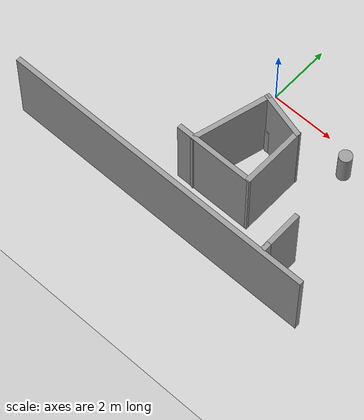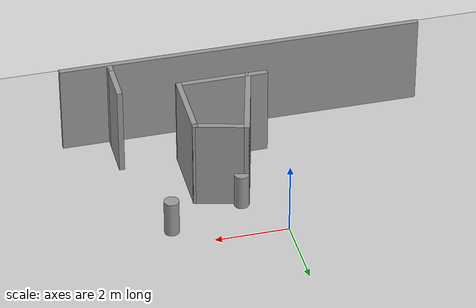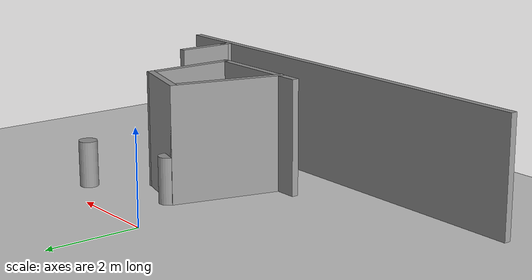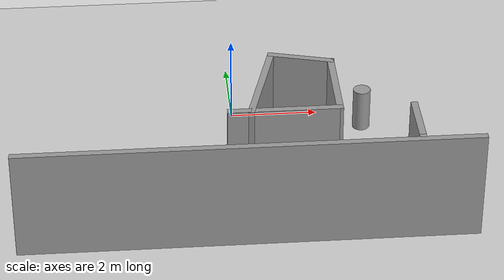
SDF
<sdf version="1.7">
 <world name="default">
  <model name="ground_plane">
   <static>1</static>
   <link name="link">
    <collision name="collision">
     <geometry><plane><normal>0 0 1</normal><size>100 100</size></plane></geometry>
     <surface>
      <contact><collide_bitmask>65535</collide_bitmask></contact>
      <friction><ode><mu>100</mu><mu2>50</mu2></ode></friction>
     </surface>
    </collision>
    <visual name="visual">
     <cast_shadows>0</cast_shadows>
     <geometry><plane><normal>0 0 1</normal><size>100 100</size></plane></geometry>
     <material>
      <script><uri>file://media/materials/scripts/gazebo.material</uri><name>Gazebo/Grey</name></script>
     </material>
    </visual>
   </link>
  </model>
  <model name="map10x10">
   <pose>0.061304 -0.054192 0 0 -0 0</pose>
   <link name="Wall_25">
    <collision name="Wall_25_Collision">
     <geometry><box><size>10 0.15 2.5</size></box></geometry>
     <pose>0 0 1.25 0 -0 0</pose>
    </collision>
    <visual name="Wall_25_Visual">
     <pose>0 0 1.25 0 -0 0</pose>
     <geometry><box><size>10 0.15 2.5</size></box></geometry>
     <material>
      <script><uri>file://media/materials/scripts/gazebo.material</uri><name>Gazebo/Grey</name></script>
      <ambient>1 1 1 1</ambient>
     </material>
     <meta><layer>0</layer></meta>
    </visual>
    <pose>0 -4.925 0 0 -0 0</pose>
   </link>
   <link name="Wall_46">
    <collision name="Wall_46_Collision">
     <geometry><box><size>2.5 0.15 2.5</size></box></geometry>
     <pose>0 0 1.25 0 -0 0</pose>
    </collision>
    <visual name="Wall_46_Visual">
     <pose>0 0 1.25 0 -0 0</pose>
     <geometry><box><size>2.5 0.15 2.5</size></box></geometry>
     <material>
      <script><uri>file://media/materials/scripts/gazebo.material</uri><name>Gazebo/Grey</name></script>
      <ambient>1 1 1 1</ambient>
     </material>
     <meta><layer>0</layer></meta>
    </visual>
    <pose>0.859566 -3.57623 0 0 -0 0</pose>
   </link>
   <link name="Wall_48">
    <collision name="Wall_48_Collision">
     <geometry><box><size>1.25 0.15 2.5</size></box></geometry>
     <pose>0 0 1.25 0 -0 0</pose>
    </collision>
    <visual name="Wall_48_Visual">
     <pose>0 0 1.25 0 -0 0</pose>
     <geometry><box><size>1.25 0.15 2.5</size></box></geometry>
     <material>
      <script><uri>file://media/materials/scripts/gazebo.material</uri><name>Gazebo/Grey</name></script>
      <ambient>1 1 1 1</ambient>
     </material>
     <meta><layer>0</layer></meta>
    </visual>
    <pose>3.64379 -4.14202 0 0 -0 -1.5708</pose>
   </link>
   <link name="Wall_49">
    <collision name="Wall_49_Collision">
     <geometry><box><size>0.25 0.15 2.5</size></box></geometry>
     <pose>0 0 1.25 0 -0 0</pose>
    </collision>
    <visual name="Wall_49_Visual">
     <pose>0 0 1.25 0 -0 0</pose>
     <geometry><box><size>0.25 0.15 2.5</size></box></geometry>
     <material>
      <script><uri>file://media/materials/scripts/gazebo.material</uri><name>Gazebo/Grey</name></script>
      <ambient>1 1 1 1</ambient>
     </material>
     <meta><layer>0</layer></meta>
    </visual>
    <pose>3.64379 -4.74202 0 0 -0 -1.5708</pose>
   </link>
   <link name="Wall_66">
    <collision name="Wall_66_Collision">
     <geometry><box><size>2.5 0.15 2.5</size></box></geometry>
     <pose>0 0 1.25 0 -0 0</pose>
    </collision>
    <visual name="Wall_66_Visual">
     <pose>0 0 1.25 0 -0 0</pose>
     <geometry><box><size>2.5 0.15 2.5</size></box></geometry>
     <material>
      <script><uri>file://media/materials/scripts/gazebo.material</uri><name>Gazebo/Grey</name></script>
      <ambient>1 1 1 1</ambient>
     </material>
     <meta><layer>0</layer></meta>
    </visual>
    <pose>0.436677 -2.45705 0 0 -0 1.309</pose>
   </link>
   <link name="Wall_68">
    <collision name="Wall_68_Collision">
     <geometry><box><size>1.5 0.15 2.5</size></box></geometry>
     <pose>0 0 1.25 0 -0 0</pose>
    </collision>
    <visual name="Wall_68_Visual">
     <pose>0 0 1.25 0 -0 0</pose>
     <geometry><box><size>1.5 0.15 2.5</size></box></geometry>
     <material>
      <script><uri>file://media/materials/scripts/gazebo.material</uri><name>Gazebo/Grey</name></script>
      <ambient>1 1 1 1</ambient>
     </material>
     <meta><layer>0</layer></meta>
    </visual>
    <pose>1.39279 -1.49679 0 0 -0 -0.261799</pose>
   </link>
   <link name="Wall_69">
    <collision name="Wall_69_Collision">
     <geometry><box><size>2.05476 0.15 2.5</size></box></geometry>
     <pose>0 0 1.25 0 -0 0</pose>
    </collision>
    <visual name="Wall_69_Visual">
     <pose>0 0 1.25 0 -0 0</pose>
     <geometry><box><size>2.05476 0.15 2.5</size></box></geometry>
     <material>
      <script><uri>file://media/materials/scripts/gazebo.material</uri><name>Gazebo/Grey</name></script>
      <ambient>1 1 1 1</ambient>
     </material>
     <meta><layer>0</layer></meta>
    </visual>
    <pose>2.03968 -2.62386 0 0 -0 -1.57616</pose>
   </link>
   <static>1</static>
  </model>
  <model name="obstacle1_clone">
   <link name="link">
    <inertial>
     <mass>1</mass>
     <inertia><ixx>0.145833</ixx><ixy>0</ixy><ixz>0</ixz><iyy>0.145833</iyy><iyz>0</iyz><izz>0.125</izz></inertia>
    </inertial>
    <visual name="visual">
     <geometry><cylinder><radius>0.2</radius><length>1</length></cylinder></geometry>
     <material>
      <script><name>Gazebo/Grey</name><uri>file://media/materials/scripts/gazebo.material</uri></script>
      <shader type="pixel"><normal_map>__default__</normal_map></shader>
      <ambient>0.3 0.3 0.3 1</ambient>
      <diffuse>0.7 0.7 0.7 1</diffuse>
      <specular>0.01 0.01 0.01 1</specular>
      <emissive>0 0 0 1</emissive>
     </material>
    </visual>
    <collision name="collision">
     <geometry><cylinder><radius>0.2</radius><length>1</length></cylinder></geometry>
     <surface>
      <friction>
       <ode><mu>1</mu><mu2>1</mu2><fdir1>0 0 0</fdir1><slip1>0</slip1><slip2>0</slip2></ode>
       <torsional>
        <coefficient>1</coefficient>
        <patch_radius>0</patch_radius>
        <surface_radius>0</surface_radius>
        <use_patch_radius>1</use_patch_radius>
        <ode><slip>0</slip></ode>
       </torsional>
      </friction>
      <bounce><restitution_coefficient>0</restitution_coefficient><threshold>1e+06</threshold></bounce>
      <contact>
       <collide_without_contact>0</collide_without_contact>
       <collide_without_contact_bitmask>1</collide_without_contact_bitmask>
       <collide_bitmask>1</collide_bitmask>
       <ode>
        <soft_cfm>0</soft_cfm>
        <soft_erp>0.2</soft_erp>
        <kp>1e+13</kp>
        <kd>1</kd>
        <max_vel>0.01</max_vel>
        <min_depth>0</min_depth>
       </ode>
       <bullet>
        <split_impulse>1</split_impulse>
        <split_impulse_penetration_threshold>-0.01</split_impulse_penetration_threshold>
        <soft_cfm>0</soft_cfm>
        <soft_erp>0.2</soft_erp>
        <kp>1e+13</kp>
        <kd>1</kd>
       </bullet>
      </contact>
     </surface>
    </collision>
   </link>
   <static>1</static>
   <pose>0.95714 -1.32209 0.5 0 -0 0</pose>
  </model>
  <model name="obstacle1_clone_clone">
   <link name="link">
    <inertial>
     <mass>1</mass>
     <inertia><ixx>0.145833</ixx><ixy>0</ixy><ixz>0</ixz><iyy>0.145833</iyy><iyz>0</iyz><izz>0.125</izz></inertia>
    </inertial>
    <visual name="visual">
     <geometry><cylinder><radius>0.2</radius><length>1</length></cylinder></geometry>
     <material>
      <script><name>Gazebo/Grey</name><uri>file://media/materials/scripts/gazebo.material</uri></script>
      <shader type="pixel"><normal_map>__default__</normal_map></shader>
      <ambient>0.3 0.3 0.3 1</ambient>
      <diffuse>0.7 0.7 0.7 1</diffuse>
      <specular>0.01 0.01 0.01 1</specular>
      <emissive>0 0 0 1</emissive>
     </material>
    </visual>
    <collision name="collision">
     <geometry><cylinder><radius>0.2</radius><length>1</length></cylinder></geometry>
     <surface>
      <friction>
       <ode><mu>1</mu><mu2>1</mu2><fdir1>0 0 0</fdir1><slip1>0</slip1><slip2>0</slip2></ode>
       <torsional>
        <coefficient>1</coefficient>
        <patch_radius>0</patch_radius>
        <surface_radius>0</surface_radius>
        <use_patch_radius>1</use_patch_radius>
        <ode><slip>0</slip></ode>
       </torsional>
      </friction>
      <bounce><restitution_coefficient>0</restitution_coefficient><threshold>1e+06</threshold></bounce>
      <contact>
       <collide_without_contact>0</collide_without_contact>
       <collide_without_contact_bitmask>1</collide_without_contact_bitmask>
       <collide_bitmask>1</collide_bitmask>
       <ode>
        <soft_cfm>0</soft_cfm>
        <soft_erp>0.2</soft_erp>
        <kp>1e+13</kp>
        <kd>1</kd>
        <max_vel>0.01</max_vel>
        <min_depth>0</min_depth>
       </ode>
       <bullet>
        <split_impulse>1</split_impulse>
        <split_impulse_penetration_threshold>-0.01</split_impulse_penetration_threshold>
        <soft_cfm>0</soft_cfm>
        <soft_erp>0.2</soft_erp>
        <kp>1e+13</kp>
        <kd>1</kd>
       </bullet>
      </contact>
     </surface>
    </collision>
   </link>
   <static>1</static>
   <pose>2.99838 -0.642649 0.5 0 -0 0</pose>
  </model>
 </world>
</sdf>
